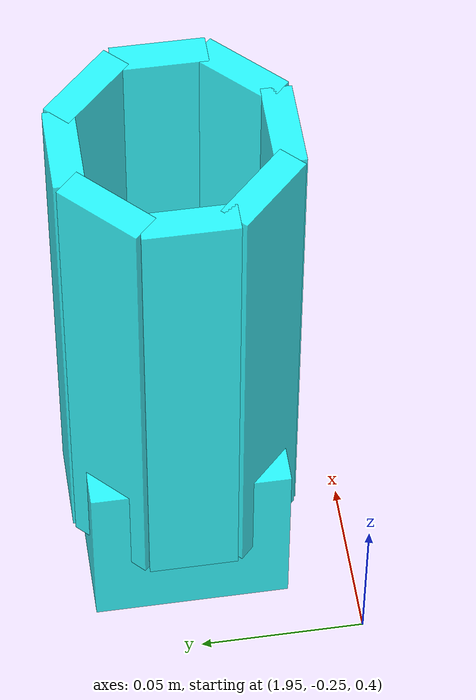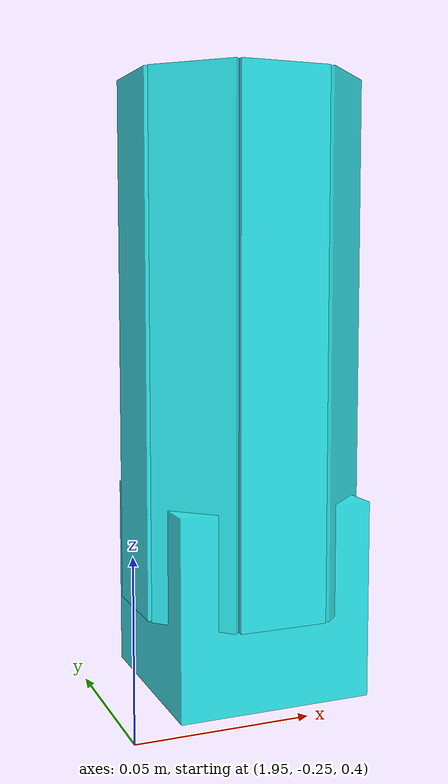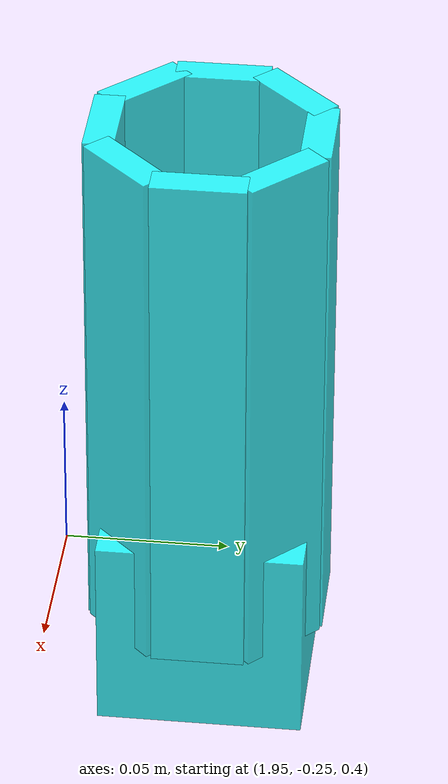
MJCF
<mujoco model="ballbot">
	<compiler angle="radian" boundmass="0.000001" boundinertia="0.000001" balanceinertia="true" autolimits="true"/>
	<option timestep="0.001" integrator="RK4" solver="CG" gravity="0 0 -9.81">
		<flag contact="enable"/>
	</option>

  	<default>
		<geom condim="4" solimp="0.99 0.99 0" solref="0.01 1" friction="1 0.005 0.0001"/>
	</default>

	<worldbody>
		<body name="ballbot" gravcomp="1" pos="0 0 0" quat="1.000000 0.000000 0.000000 0.000000">
            <body name="cup_x" pos="2 -0.2 0.5" gravcomp="1">
                <inertial pos="0 0 0" mass="0.250" diaginertia="0.001667 0.001667 0.001667"/>
                <joint name="transx_joint" pos="0 0 0" axis="1 0 0" type="slide" range="-100 100"/>
                <body name="cup_y" gravcomp="1">
                    <inertial pos="0 0 0" mass="1" diaginertia="0.001667 0.001667 0.001667"/>
                    <joint name="transy_joint" pos="0 0 0" axis="0 1 0" type="slide" range="-100 100"/>
                    <body name="cup_z" gravcomp="1">
                        <inertial pos="0 0 0" mass="1" diaginertia="0.001667 0.001667 0.001667"/>
                        <joint name="transz_joint" pos="0 0 0" axis="0 0 1" type="slide" range="-100 100"/>
                        <body name="cup_rotx" gravcomp="1">
                            <inertial pos="0 0 0" mass="1" diaginertia="0.001667 0.001667 0.001667"/>
                            <joint name="rotx_joint" pos="0 0 0" axis="1 0 0" range="-3.14 3.14"/>
                            <body name="cup_roty" gravcomp="1">
                                <inertial pos="0 0 0" mass="1" diaginertia="0.001667 0.001667 0.001667"/>
                                <joint name="roty_joint" pos="0 0 0" axis="0 1 0" range="-3.14 3.14"/>
                                <body name="free_cup" gravcomp="1">
                                    <inertial pos="0 0 0" mass="0.250" diaginertia="0.001667 0.001667 0.001667"/>
                                    <joint name="rotz_joint" pos="0 0 0" axis="0 0 1" range="-3.14 3.14"/>
									<geom type="box" pos="0 0 -0.076" size="0.03 0.03 0.03" rgba="0 1 1 0.8"/>
									<geom type="box" pos="0.03 0 0" euler="0 0 0" size="0.0044 0.013420519420888278 0.08" rgba="0 1 1 0.8" />
									<geom type="box" pos="0.021213 0.021213 0" euler="0 0 0.7853981633974483" size="0.0044 0.013420519420888278 0.08" rgba="0 1 1 0.8" />
									<geom type="box" pos="0 0.03 0" euler="0 0 1.5707963267948966" size="0.0044 0.013420519420888278 0.08" rgba="0 1 1 0.8" />
									<geom type="box" pos="-0.021213 0.021213 0" euler="0 0 2.356194490192345" size="0.0044 0.013420519420888278 0.08" rgba="0 1 1 0.8" />
									<geom type="box" pos="-0.03 0 0" euler="0 0 3.141592653589793" size="0.0044 0.013420519420888278 0.08" rgba="0 1 1 0.8" />
									<geom type="box" pos="-0.021213 -0.021213 0" euler="0 0 -2.356194490192345" size="0.0044 0.013420519420888278 0.08" rgba="0 1 1 0.8" />
									<geom type="box" pos="0 -0.03 0" euler="0 0 -1.5707963267948966" size="0.0044 0.013420519420888278 0.08" rgba="0 1 1 0.8" />
									<geom type="box" pos="0.021213 -0.021213 0" euler="0 0 -0.7853981633974483" size="0.0044 0.013420519420888278 0.08" rgba="0 1 1 0.8" />
                                </body>
                            </body>
                        </body>
                    </body>
                </body>
            </body>
        </body>
	</worldbody>
</mujoco>
